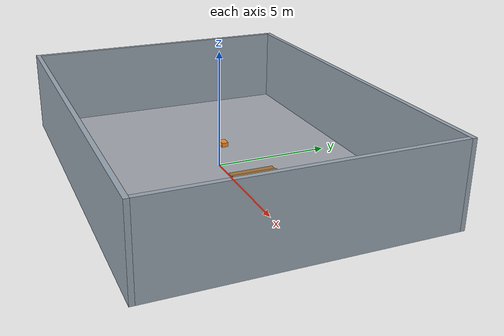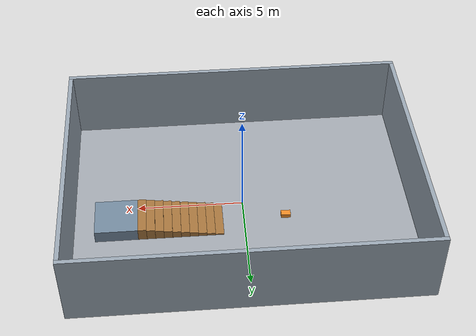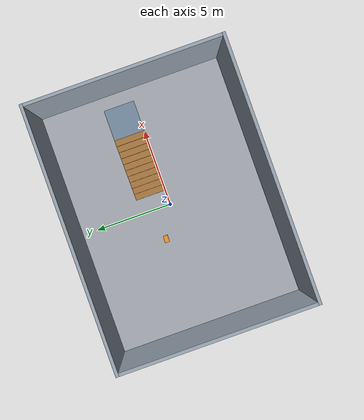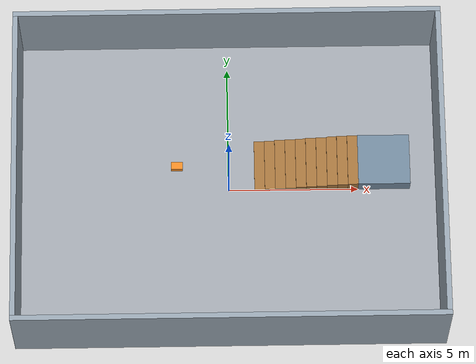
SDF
<?xml version="1.0" encoding="UTF-8"?>
<sdf version="1.6">
  <world name="ramp_nav">
    <gravity>0 0 -9.81</gravity>
    <physics name="default" type="ode">
      <max_step_size>.001</max_step_size>
      <real_time_update_rate>1000</real_time_update_rate>
    </physics>
    <light name="sun" type="directional">
      <pose>0 0 10 0 0 0</pose>
      <diffuse>.9 .9 .9 1</diffuse>
      <direction>-.5 -.2 -.9</direction>
    </light>
    <model name="ramp_geometry">
      <static>true</static>
      <link name="ground">
        <pose>0 0 -0.1 0 0 0</pose>
        <collision name="ground_collision">
          <geometry>
            <box>
              <size>16 12 0.2</size>
            </box>
          </geometry>
        </collision>
        <visual name="ground_visual">
          <geometry>
            <box>
              <size>16 12 0.2</size>
            </box>
          </geometry>
          <material>
            <ambient>0.64 0.66 0.69 1</ambient>
            <diffuse>0.64 0.66 0.69 1</diffuse>
          </material>
        </visual>
      </link>
      <link name="platform">
        <pose>6 1 0.3 0 0 0</pose>
        <collision name="platform_collision">
          <geometry>
            <box>
              <size>2 2 0.6</size>
            </box>
          </geometry>
        </collision>
        <visual name="platform_visual">
          <geometry>
            <box>
              <size>2 2 0.6</size>
            </box>
          </geometry>
          <material>
            <ambient>0.45 0.54 0.62 1</ambient>
            <diffuse>0.45 0.54 0.62 1</diffuse>
          </material>
        </visual>
      </link>
      <link name="wall_north">
        <pose>0 6.1 1.6 0 0 0</pose>
        <collision name="wall_north_collision">
          <geometry>
            <box>
              <size>16.4 0.2 3.6</size>
            </box>
          </geometry>
        </collision>
        <visual name="wall_north_visual">
          <geometry>
            <box>
              <size>16.4 0.2 3.6</size>
            </box>
          </geometry>
          <material>
            <ambient>0.6 0.65 0.7 1</ambient>
            <diffuse>0.6 0.65 0.7 1</diffuse>
          </material>
        </visual>
      </link>
      <link name="wall_south">
        <pose>0 -6.1 1.6 0 0 0</pose>
        <collision name="wall_south_collision">
          <geometry>
            <box>
              <size>16.4 0.2 3.6</size>
            </box>
          </geometry>
        </collision>
        <visual name="wall_south_visual">
          <geometry>
            <box>
              <size>16.4 0.2 3.6</size>
            </box>
          </geometry>
          <material>
            <ambient>0.6 0.65 0.7 1</ambient>
            <diffuse>0.6 0.65 0.7 1</diffuse>
          </material>
        </visual>
      </link>
      <link name="wall_east">
        <pose>8.1 0 1.6 0 0 0</pose>
        <collision name="wall_east_collision">
          <geometry>
            <box>
              <size>0.2 12 3.6</size>
            </box>
          </geometry>
        </collision>
        <visual name="wall_east_visual">
          <geometry>
            <box>
              <size>0.2 12 3.6</size>
            </box>
          </geometry>
          <material>
            <ambient>0.6 0.65 0.7 1</ambient>
            <diffuse>0.6 0.65 0.7 1</diffuse>
          </material>
        </visual>
      </link>
      <link name="wall_west">
        <pose>-8.1 0 1.6 0 0 0</pose>
        <collision name="wall_west_collision">
          <geometry>
            <box>
              <size>0.2 12 3.6</size>
            </box>
          </geometry>
        </collision>
        <visual name="wall_west_visual">
          <geometry>
            <box>
              <size>0.2 12 3.6</size>
            </box>
          </geometry>
          <material>
            <ambient>0.6 0.65 0.7 1</ambient>
            <diffuse>0.6 0.65 0.7 1</diffuse>
          </material>
        </visual>
      </link>
      <link name="ramp01">
        <pose>1.2 1 0.03 0 0 0</pose>
        <collision name="ramp01_collision">
          <geometry>
            <box>
              <size>0.4 2 0.06</size>
            </box>
          </geometry>
        </collision>
        <visual name="ramp01_visual">
          <geometry>
            <box>
              <size>0.4 2 0.06</size>
            </box>
          </geometry>
          <material>
            <ambient>0.65 0.46 0.24 1</ambient>
            <diffuse>0.65 0.46 0.24 1</diffuse>
          </material>
        </visual>
      </link>
      <link name="ramp02">
        <pose>1.6 1 0.06 0 0 0</pose>
        <collision name="ramp02_collision">
          <geometry>
            <box>
              <size>0.4 2 0.12</size>
            </box>
          </geometry>
        </collision>
        <visual name="ramp02_visual">
          <geometry>
            <box>
              <size>0.4 2 0.12</size>
            </box>
          </geometry>
          <material>
            <ambient>0.65 0.46 0.24 1</ambient>
            <diffuse>0.65 0.46 0.24 1</diffuse>
          </material>
        </visual>
      </link>
      <link name="ramp03">
        <pose>2 1 0.09 0 0 0</pose>
        <collision name="ramp03_collision">
          <geometry>
            <box>
              <size>0.4 2 0.18</size>
            </box>
          </geometry>
        </collision>
        <visual name="ramp03_visual">
          <geometry>
            <box>
              <size>0.4 2 0.18</size>
            </box>
          </geometry>
          <material>
            <ambient>0.65 0.46 0.24 1</ambient>
            <diffuse>0.65 0.46 0.24 1</diffuse>
          </material>
        </visual>
      </link>
      <link name="ramp04">
        <pose>2.4 1 0.12 0 0 0</pose>
        <collision name="ramp04_collision">
          <geometry>
            <box>
              <size>0.4 2 0.24</size>
            </box>
          </geometry>
        </collision>
        <visual name="ramp04_visual">
          <geometry>
            <box>
              <size>0.4 2 0.24</size>
            </box>
          </geometry>
          <material>
            <ambient>0.65 0.46 0.24 1</ambient>
            <diffuse>0.65 0.46 0.24 1</diffuse>
          </material>
        </visual>
      </link>
      <link name="ramp05">
        <pose>2.8 1 0.15 0 0 0</pose>
        <collision name="ramp05_collision">
          <geometry>
            <box>
              <size>0.4 2 0.3</size>
            </box>
          </geometry>
        </collision>
        <visual name="ramp05_visual">
          <geometry>
            <box>
              <size>0.4 2 0.3</size>
            </box>
          </geometry>
          <material>
            <ambient>0.65 0.46 0.24 1</ambient>
            <diffuse>0.65 0.46 0.24 1</diffuse>
          </material>
        </visual>
      </link>
      <link name="ramp06">
        <pose>3.2 1 0.18 0 0 0</pose>
        <collision name="ramp06_collision">
          <geometry>
            <box>
              <size>0.4 2 0.36</size>
            </box>
          </geometry>
        </collision>
        <visual name="ramp06_visual">
          <geometry>
            <box>
              <size>0.4 2 0.36</size>
            </box>
          </geometry>
          <material>
            <ambient>0.65 0.46 0.24 1</ambient>
            <diffuse>0.65 0.46 0.24 1</diffuse>
          </material>
        </visual>
      </link>
      <link name="ramp07">
        <pose>3.6 1 0.21 0 0 0</pose>
        <collision name="ramp07_collision">
          <geometry>
            <box>
              <size>0.4 2 0.42</size>
            </box>
          </geometry>
        </collision>
        <visual name="ramp07_visual">
          <geometry>
            <box>
              <size>0.4 2 0.42</size>
            </box>
          </geometry>
          <material>
            <ambient>0.65 0.46 0.24 1</ambient>
            <diffuse>0.65 0.46 0.24 1</diffuse>
          </material>
        </visual>
      </link>
      <link name="ramp08">
        <pose>4 1 0.24 0 0 0</pose>
        <collision name="ramp08_collision">
          <geometry>
            <box>
              <size>0.4 2 0.48</size>
            </box>
          </geometry>
        </collision>
        <visual name="ramp08_visual">
          <geometry>
            <box>
              <size>0.4 2 0.48</size>
            </box>
          </geometry>
          <material>
            <ambient>0.65 0.46 0.24 1</ambient>
            <diffuse>0.65 0.46 0.24 1</diffuse>
          </material>
        </visual>
      </link>
      <link name="ramp09">
        <pose>4.4 1 0.27 0 0 0</pose>
        <collision name="ramp09_collision">
          <geometry>
            <box>
              <size>0.4 2 0.54</size>
            </box>
          </geometry>
        </collision>
        <visual name="ramp09_visual">
          <geometry>
            <box>
              <size>0.4 2 0.54</size>
            </box>
          </geometry>
          <material>
            <ambient>0.65 0.46 0.24 1</ambient>
            <diffuse>0.65 0.46 0.24 1</diffuse>
          </material>
        </visual>
      </link>
      <link name="ramp10">
        <pose>4.8 1 0.3 0 0 0</pose>
        <collision name="ramp10_collision">
          <geometry>
            <box>
              <size>0.4 2 0.6</size>
            </box>
          </geometry>
        </collision>
        <visual name="ramp10_visual">
          <geometry>
            <box>
              <size>0.4 2 0.6</size>
            </box>
          </geometry>
          <material>
            <ambient>0.65 0.46 0.24 1</ambient>
            <diffuse>0.65 0.46 0.24 1</diffuse>
          </material>
        </visual>
      </link>
    </model>
    <model name="ramp_carrier">
      <static>true</static>
      <link name="body">
        <pose>-2 1 0.1 0 0 0</pose>
        <visual name="carrier_visual">
          <geometry>
            <box>
              <size>0.45 0.3 0.2</size>
            </box>
          </geometry>
          <material>
            <ambient>.95 .55 .15 1</ambient>
            <diffuse>.95 .55 .15 1</diffuse>
          </material>
        </visual>
      </link>
    </model>
  </world>
</sdf>
